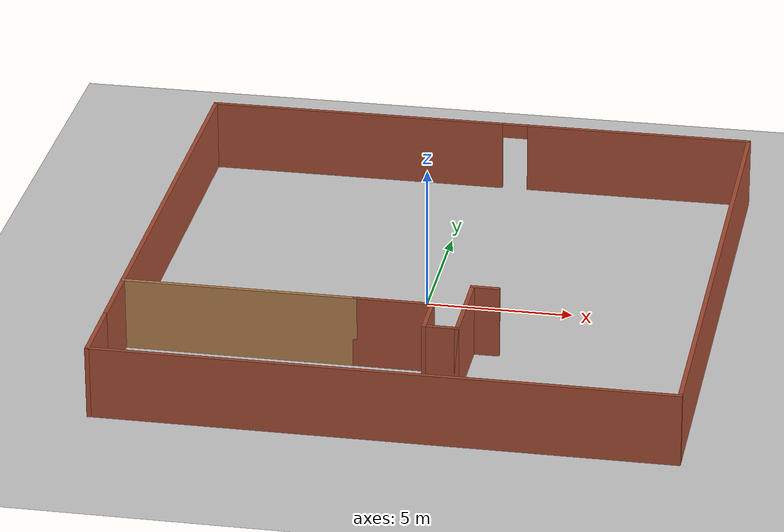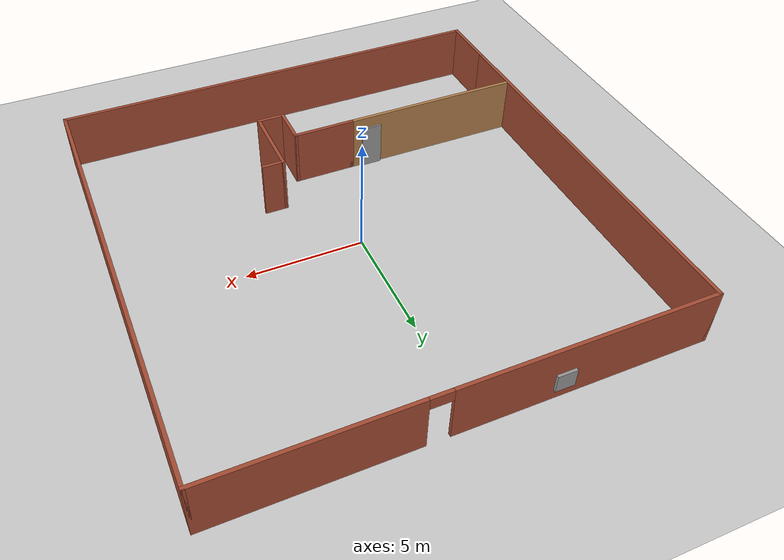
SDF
<sdf version="1.7">
 <world name="default">
  <light name="sun" type="directional">
   <pose>0 0 10 0 -0 0</pose>
   <diffuse>0.8 0.8 0.8 1</diffuse>
   <specular>0.2 0.2 0.2 1</specular>
   <attenuation>
    <range>1000</range>
    <constant>0.9</constant>
    <linear>0.01</linear>
    <quadratic>0.001</quadratic>
   </attenuation>
   <direction>-0.5 0.1 -0.9</direction>
   <spot><inner_angle>0</inner_angle><outer_angle>0</outer_angle><falloff>0</falloff></spot>
  </light>
  <model name="ground_plane">
   <static>1</static>
   <link name="link">
    <collision name="collision">
     <geometry><plane><normal>0 0 1</normal><size>100 100</size></plane></geometry>
     <surface><friction><ode><mu>100</mu><mu2>50</mu2></ode></friction></surface>
    </collision>
    <visual name="visual">
     <cast_shadows>0</cast_shadows>
     <geometry><plane><normal>0 0 1</normal><size>100 100</size></plane></geometry>
     <material>
      <script><uri>file://media/materials/scripts/gazebo.material</uri><name>Gazebo/Grey</name></script>
     </material>
    </visual>
   </link>
  </model>
  <gravity>0 0 -9.8</gravity>
  <magnetic_field>6e-06 2.3e-05 -4.2e-05</magnetic_field>
  <atmosphere type="adiabatic"/>
  <physics type="ode">
   <max_step_size>0.001</max_step_size>
   <real_time_factor>1</real_time_factor>
   <real_time_update_rate>1000</real_time_update_rate>
  </physics>
  <scene><ambient>0.4 0.4 0.4 1</ambient><background>0.7 0.7 0.7 1</background><shadows>1</shadows></scene>
  <audio><device>default</device></audio>
  <spherical_coordinates>
   <surface_model>EARTH_WGS84</surface_model>
   <latitude_deg>0</latitude_deg>
   <longitude_deg>0</longitude_deg>
   <elevation>0</elevation>
   <heading_deg>0</heading_deg>
  </spherical_coordinates>
  <model name="my_room">
   <pose>0.199526 -0.076187 0 0 -0 0</pose>
   <link name="Door_1">
    <collision name="Door_1_Collision">
     <geometry><box><size>0.9 0.17 2</size></box></geometry>
     <pose>0 0 1 0 -0 0</pose>
    </collision>
    <visual name="Door_1_Visual">
     <pose>0 0 1 0 -0 0</pose>
     <geometry><box><size>0.9 0.17 2</size></box></geometry>
     <material>
      <script><uri>file://media/materials/scripts/gazebo.material</uri><name>Gazebo/Grey</name></script>
     </material>
    </visual>
    <pose>-2.71665 -4.69678 0 0 -0 0</pose>
   </link>
   <link name="Wall_14">
    <collision name="Wall_14_Collision">
     <geometry><box><size>17.25 0.15 2.5</size></box></geometry>
     <pose>0 0 1.25 0 -0 0</pose>
    </collision>
    <visual name="Wall_14_Visual">
     <pose>0 0 1.25 0 -0 0</pose>
     <geometry><box><size>17.25 0.15 2.5</size></box></geometry>
     <material>
      <script><uri>file://media/materials/scripts/gazebo.material</uri><name>Gazebo/Bricks</name></script>
      <ambient>1 1 1 1</ambient>
     </material>
     <meta><layer>0</layer></meta>
    </visual>
    <pose>-9.675 1.25 0 0 -0 1.5708</pose>
   </link>
   <link name="Wall_15">
    <pose>0 9.8 0 0 -0 0</pose>
    <visual name="Wall_15_Visual_0">
     <pose>-4.45443 0 1.25 0 -0 0</pose>
     <geometry><box><size>10.5911 0.15 2.5</size></box></geometry>
     <material>
      <script><uri>file://media/materials/scripts/gazebo.material</uri><name>Gazebo/Bricks</name></script>
      <ambient>1 1 1 1</ambient>
     </material>
     <meta><layer>0</layer></meta>
    </visual>
    <collision name="Wall_15_Collision_0">
     <geometry><box><size>10.5911 0.15 2.5</size></box></geometry>
     <pose>-4.45443 0 1.25 0 -0 0</pose>
    </collision>
    <visual name="Wall_15_Visual_1">
     <pose>5.74557 0 1.25 0 -0 0</pose>
     <geometry><box><size>8.00886 0.15 2.5</size></box></geometry>
     <material>
      <script><uri>file://media/materials/scripts/gazebo.material</uri><name>Gazebo/Bricks</name></script>
      <ambient>1 1 1 1</ambient>
     </material>
     <meta><layer>0</layer></meta>
    </visual>
    <collision name="Wall_15_Collision_1">
     <geometry><box><size>8.00886 0.15 2.5</size></box></geometry>
     <pose>5.74557 0 1.25 0 -0 0</pose>
    </collision>
    <visual name="Wall_15_Visual_2">
     <pose>1.29114 0 2.25 0 -0 0</pose>
     <geometry><box><size>0.9 0.15 0.5</size></box></geometry>
     <material>
      <script><uri>file://media/materials/scripts/gazebo.material</uri><name>Gazebo/Bricks</name></script>
      <ambient>1 1 1 1</ambient>
     </material>
     <meta><layer>0</layer></meta>
    </visual>
    <collision name="Wall_15_Collision_2">
     <geometry><box><size>0.9 0.15 0.5</size></box></geometry>
     <pose>1.29114 0 2.25 0 -0 0</pose>
    </collision>
   </link>
   <link name="Wall_16">
    <collision name="Wall_16_Collision">
     <geometry><box><size>19.75 0.15 2.5</size></box></geometry>
     <pose>0 0 1.25 0 -0 0</pose>
    </collision>
    <visual name="Wall_16_Visual">
     <pose>0 0 1.25 0 -0 0</pose>
     <geometry><box><size>19.75 0.15 2.5</size></box></geometry>
     <material>
      <script><uri>file://media/materials/scripts/gazebo.material</uri><name>Gazebo/Bricks</name></script>
      <ambient>1 1 1 1</ambient>
     </material>
     <meta><layer>0</layer></meta>
    </visual>
    <pose>9.675 -0 0 0 -0 -1.5708</pose>
   </link>
   <link name="Wall_17">
    <collision name="Wall_17_Collision">
     <geometry><box><size>19.5 0.15 2.5</size></box></geometry>
     <pose>0 0 1.25 0 -0 0</pose>
    </collision>
    <visual name="Wall_17_Visual">
     <pose>0 0 1.25 0 -0 0</pose>
     <geometry><box><size>19.5 0.15 2.5</size></box></geometry>
     <material>
      <script><uri>file://media/materials/scripts/gazebo.material</uri><name>Gazebo/Bricks</name></script>
      <ambient>1 1 1 1</ambient>
     </material>
     <meta><layer>0</layer></meta>
    </visual>
    <pose>0 -9.8 0 0 -0 3.14159</pose>
   </link>
   <link name="Wall_19">
    <collision name="Wall_19_Collision">
     <geometry><box><size>2.65 0.15 2.5</size></box></geometry>
     <pose>0 0 1.25 0 -0 0</pose>
    </collision>
    <visual name="Wall_19_Visual">
     <pose>0 0 1.25 0 -0 0</pose>
     <geometry><box><size>2.65 0.15 2.5</size></box></geometry>
     <material>
      <script><uri>file://media/materials/scripts/gazebo.material</uri><name>Gazebo/Bricks</name></script>
      <ambient>1 1 1 1</ambient>
     </material>
     <meta><layer>0</layer></meta>
    </visual>
    <pose>-9.675 -8.55 0 0 -0 1.5708</pose>
   </link>
   <link name="Wall_21">
    <collision name="Wall_21_Collision">
     <geometry><box><size>8 0.15 2.5</size></box></geometry>
     <pose>0 0 1.25 0 -0 0</pose>
    </collision>
    <visual name="Wall_21_Visual">
     <pose>0 0 1.25 0 -0 0</pose>
     <geometry><box><size>8 0.15 2.5</size></box></geometry>
     <material>
      <script><uri>file://media/materials/scripts/gazebo.material</uri><name>Gazebo/Wood</name></script>
      <ambient>1 1 1 1</ambient>
     </material>
     <meta><layer>0</layer></meta>
    </visual>
    <pose>-5.71999 -4.7666 0 0 -0 0</pose>
   </link>
   <link name="Wall_22">
    <collision name="Wall_22_Collision">
     <geometry><box><size>2.75 0.15 2.5</size></box></geometry>
     <pose>0 0 1.25 0 -0 0</pose>
    </collision>
    <visual name="Wall_22_Visual">
     <pose>0 0 1.25 0 -0 0</pose>
     <geometry><box><size>2.75 0.15 2.5</size></box></geometry>
     <material>
      <script><uri>file://media/materials/scripts/gazebo.material</uri><name>Gazebo/Bricks</name></script>
      <ambient>1 1 1 1</ambient>
     </material>
     <meta><layer>0</layer></meta>
    </visual>
    <pose>-0.494995 -4.7666 0 0 -0 0</pose>
   </link>
   <link name="Wall_23">
    <collision name="Wall_23_Collision">
     <geometry><box><size>1.75 0.15 2.5</size></box></geometry>
     <pose>0 0 1.25 0 -0 0</pose>
    </collision>
    <visual name="Wall_23_Visual">
     <pose>0 0 1.25 0 -0 0</pose>
     <geometry><box><size>1.75 0.15 2.5</size></box></geometry>
     <material>
      <script><uri>file://media/materials/scripts/gazebo.material</uri><name>Gazebo/Bricks</name></script>
      <ambient>1 1 1 1</ambient>
     </material>
     <meta><layer>0</layer></meta>
    </visual>
    <pose>0.805005 -5.5666 0 0 -0 -1.5708</pose>
   </link>
   <link name="Wall_24">
    <collision name="Wall_24_Collision">
     <geometry><box><size>1.25 0.15 2.5</size></box></geometry>
     <pose>0 0 1.25 0 -0 0</pose>
    </collision>
    <visual name="Wall_24_Visual">
     <pose>0 0 1.25 0 -0 0</pose>
     <geometry><box><size>1.25 0.15 2.5</size></box></geometry>
     <material>
      <script><uri>file://media/materials/scripts/gazebo.material</uri><name>Gazebo/Bricks</name></script>
      <ambient>1 1 1 1</ambient>
     </material>
     <meta><layer>0</layer></meta>
    </visual>
    <pose>1.35501 -6.3666 0 0 -0 0</pose>
   </link>
   <link name="Wall_25">
    <collision name="Wall_25_Collision">
     <geometry><box><size>3.25 0.15 2.5</size></box></geometry>
     <pose>0 0 1.25 0 -0 0</pose>
    </collision>
    <visual name="Wall_25_Visual">
     <pose>0 0 1.25 0 -0 0</pose>
     <geometry><box><size>3.25 0.15 2.5</size></box></geometry>
     <material>
      <script><uri>file://media/materials/scripts/gazebo.material</uri><name>Gazebo/Bricks</name></script>
      <ambient>1 1 1 1</ambient>
     </material>
     <meta><layer>0</layer></meta>
    </visual>
    <pose>1.90501 -4.8166 0 0 -0 1.5708</pose>
   </link>
   <link name="Wall_26">
    <collision name="Wall_26_Collision">
     <geometry><box><size>1 0.15 2.5</size></box></geometry>
     <pose>0 0 1.25 0 -0 0</pose>
    </collision>
    <visual name="Wall_26_Visual">
     <pose>0 0 1.25 0 -0 0</pose>
     <geometry><box><size>1 0.15 2.5</size></box></geometry>
     <material>
      <script><uri>file://media/materials/scripts/gazebo.material</uri><name>Gazebo/Bricks</name></script>
      <ambient>1 1 1 1</ambient>
     </material>
     <meta><layer>0</layer></meta>
    </visual>
    <pose>2.33 -3.2666 0 0 -0 0</pose>
   </link>
   <link name="Window_0">
    <collision name="Window_0_Collision">
     <geometry><box><size>0.8 0.17 0.8</size></box></geometry>
     <pose>0 0 0.4 0 -0 0</pose>
    </collision>
    <visual name="Window_0_Visual">
     <pose>0 0 0.4 0 -0 0</pose>
     <geometry><box><size>0.8 0.17 0.8</size></box></geometry>
     <material>
      <script><uri>file://media/materials/scripts/gazebo.material</uri><name>Gazebo/Grey</name></script>
     </material>
    </visual>
    <pose>-3.50082 9.90008 0.5 0 -0 0</pose>
   </link>
   <static>1</static>
  </model>
 </world>
</sdf>
